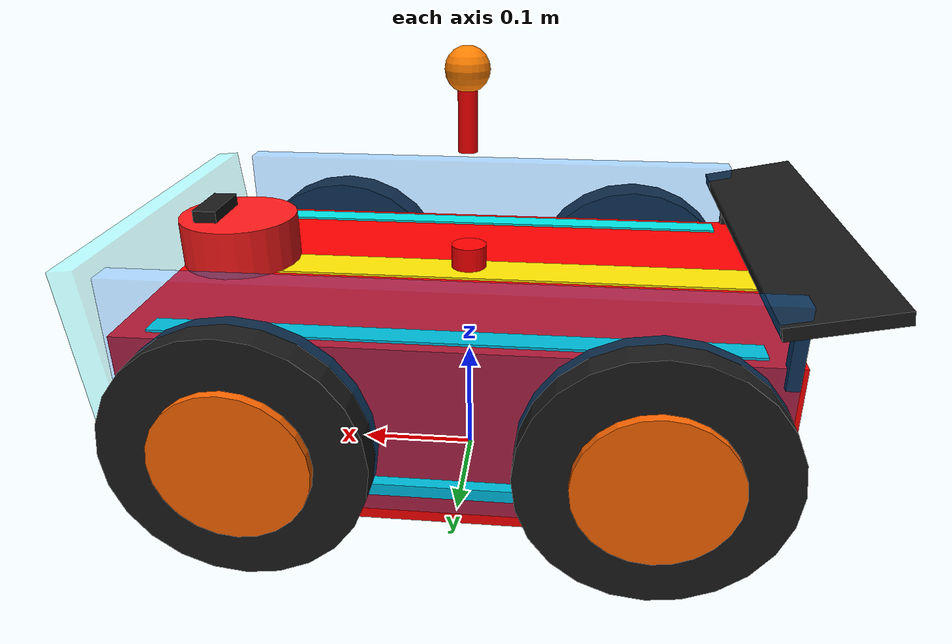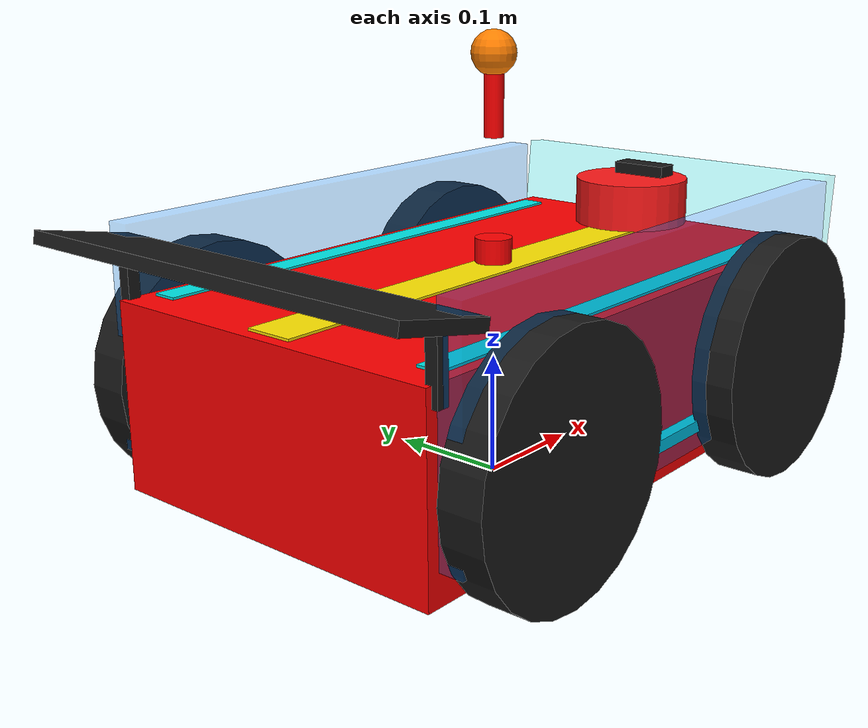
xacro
<?xml version="1.0"?>
<robot name="diff_drive_robot" xmlns:xacro="http://www.ros.org/wiki/xacro">

  <!-- Define properties for easy modification -->
  <xacro:property name="wheel_radius" value="0.1"/>
  <xacro:property name="wheel_width" value="0.05"/>
  <xacro:property name="wheel_mass" value="0.5"/>
  <xacro:property name="body_length" value="0.5"/>
  <xacro:property name="body_width" value="0.3"/>
  <xacro:property name="body_height" value="0.15"/>
  <xacro:property name="body_mass" value="10.0"/>
  <xacro:property name="wheel_offset_x" value="0.15"/>

  <!-- ==================== MATERIALS (Racing Theme) ==================== -->
  <material name="racing_black">
    <color rgba="0.1 0.1 0.1 1.0"/>
  </material>
  <material name="racing_red">
    <color rgba="1 0 0 1"/>
  </material>
  <material name="racing_yellow">
    <color rgba="1.0 0.9 0.0 1.0"/>
  </material>
  <material name="glow_orange">
    <color rgba="1.0 0.5 0.0 1.0"/>
  </material>
  <material name="glow_cyan">
    <color rgba="0.0 0.9 0.9 1.0"/>
  </material>
  <material name="glow_red">
    <color rgba="1.0 0.1 0.1 1.0"/>
  </material>
  <material name="energy_shield_blue">
    <color rgba="0.0 0.5 1.0 0.3"/>
  </material>
  <material name="energy_shield_cyan">
    <color rgba="0.0 1.0 1.0 0.25"/>
  </material>
  <material name="wheel_rim_orange">
    <color rgba="1.0 0.4 0.0 1.0"/>
  </material>

  <link name="base_footprint"/>
  <joint name="base_joint" type="fixed">
    <parent link="base_footprint"/>
    <child link="base_link"/>
    <origin xyz="0 0 0.1" rpy="0 0 0"/>
  </joint>

  <!-- ==================== BODY (Red) ==================== -->
  <link name="base_link">
    <visual>
      <geometry>
        <box size="${body_length} ${body_width} ${body_height}"/>
      </geometry>
      <material name="racing_red"/> <!-- Change: now racing red -->
    </visual>
    <collision>
      <geometry>
        <box size="${body_length} ${body_width} ${body_height}"/>
      </geometry>
    </collision>
    <inertial>
      <mass value="${body_mass}"/>
      <inertia ixx="0.0625" ixy="0.0" ixz="0.0"
               iyy="0.1354" iyz="0.0"
               izz="0.1729"/>
    </inertial>
  </link>

  <!-- ==================== RACING STRIPES ==================== -->
  <link name="racing_stripe_center">
    <visual>
      <origin xyz="0 0 0.076" rpy="0 0 0"/>
      <geometry>
        <box size="0.48 0.04 0.002"/>
      </geometry>
      <material name="racing_yellow"/>
    </visual>
  </link>
  <joint name="stripe_center_joint" type="fixed">
    <parent link="base_link"/>
    <child link="racing_stripe_center"/>
    <origin xyz="0 0 0" rpy="0 0 0"/>
  </joint>
  <link name="racing_stripe_left">
    <visual>
      <origin xyz="0 0.13 0.076" rpy="0 0 0"/>
      <geometry>
        <box size="0.45 0.02 0.002"/>
      </geometry>
      <material name="glow_cyan"/>
    </visual>
  </link>
  <joint name="stripe_left_joint" type="fixed">
    <parent link="base_link"/>
    <child link="racing_stripe_left"/>
    <origin xyz="0 0 0" rpy="0 0 0"/>
  </joint>
  <link name="racing_stripe_right">
    <visual>
      <origin xyz="0 -0.13 0.076" rpy="0 0 0"/>
      <geometry>
        <box size="0.45 0.02 0.002"/>
      </geometry>
      <material name="glow_cyan"/>
    </visual>
  </link>
  <joint name="stripe_right_joint" type="fixed">
    <parent link="base_link"/>
    <child link="racing_stripe_right"/>
    <origin xyz="0 0 0" rpy="0 0 0"/>
  </joint>

  <!-- ==================== SPOILER ==================== -->
  <link name="spoiler">
    <visual>
      <origin xyz="-0.26 0 0.12" rpy="0 0.2 0"/>
      <geometry>
        <box size="0.08 0.35 0.01"/>
      </geometry>
      <material name="racing_black"/>
    </visual>
  </link>
  <joint name="spoiler_joint" type="fixed">
    <parent link="base_link"/>
    <child link="spoiler"/>
    <origin xyz="0 0 0" rpy="0 0 0"/>
  </joint>
  <link name="spoiler_support_left">
    <visual>
      <origin xyz="-0.24 0.15 0.085" rpy="0 0 0"/>
      <geometry>
        <box size="0.01 0.01 0.05"/>
      </geometry>
      <material name="racing_black"/>
    </visual>
  </link>
  <joint name="spoiler_support_l_joint" type="fixed">
    <parent link="base_link"/>
    <child link="spoiler_support_left"/>
    <origin xyz="0 0 0" rpy="0 0 0"/>
  </joint>
  <link name="spoiler_support_right">
    <visual>
      <origin xyz="-0.24 -0.15 0.085" rpy="0 0 0"/>
      <geometry>
        <box size="0.01 0.01 0.05"/>
      </geometry>
      <material name="racing_black"/>
    </visual>
  </link>
  <joint name="spoiler_support_r_joint" type="fixed">
    <parent link="base_link"/>
    <child link="spoiler_support_right"/>
    <origin xyz="0 0 0" rpy="0 0 0"/>
  </joint>

  <!-- ==================== ANTENNA (with spinning joint and beacon) ==================== -->
  <link name="antenna_base">
    <visual>
      <origin xyz="0 0 0.09" rpy="0 0 0"/>
      <geometry>
        <cylinder radius="0.015" length="0.02"/>
      </geometry>
      <material name="racing_red"/>
    </visual>
  </link>
  <joint name="antenna_base_joint" type="fixed">
    <parent link="base_link"/>
    <child link="antenna_base"/>
    <origin xyz="0 0 0" rpy="0 0 0"/>
  </joint>
  <link name="antenna_rod">
    <visual>
      <origin xyz="0 0 0.11" rpy="0 0 0"/>
      <geometry>
        <cylinder radius="0.008" length="0.06"/>
      </geometry>
      <material name="racing_red"/>
    </visual>
    <inertial>
      <mass value="0.01"/>
      <inertia ixx="0.00001" ixy="0.0" ixz="0.0"
               iyy="0.00001" iyz="0.0"
               izz="0.00001"/>
    </inertial>
  </link>
  <joint name="antenna_spin_joint" type="continuous">
    <parent link="antenna_base"/>
    <child link="antenna_rod"/>
    <origin xyz="0 0 0.1" rpy="0 0 0"/>
    <axis xyz="0 0 1"/>
  </joint>
  <link name="beacon_light">
    <visual>
      <origin xyz="0 0 0.145" rpy="0 0 0"/>
      <geometry>
        <sphere radius="0.018"/>
      </geometry>
      <material name="glow_orange"/>
    </visual>
  </link>
  <joint name="beacon_joint" type="fixed">
    <parent link="antenna_rod"/>
    <child link="beacon_light"/>
    <origin xyz="0 0 0" rpy="0 0 0"/>
  </joint>

  <!-- ==================== ENERGY SHIELDS/UNDERGLOW (No change) ==================== -->
  <!-- Front shield -->
  <link name="energy_shield_front">
    <visual>
      <origin xyz="0.26 0 0.04" rpy="0 0.1 0"/>
      <geometry>
        <box size="0.02 0.32 0.18"/>
      </geometry>
      <material name="energy_shield_cyan"/>
    </visual>
  </link>

  <joint name="shield_front_joint" type="fixed">
    <parent link="base_link"/>
    <child link="energy_shield_front"/>
    <origin xyz="0 0 0" rpy="0 0 0"/>
  </joint>

  <!-- Side shields -->
  <link name="energy_shield_left">
    <visual>
      <origin xyz="0 0.16 0.04" rpy="0 0 0"/>
      <geometry>
        <box size="0.48 0.02 0.18"/>
      </geometry>
      <material name="energy_shield_blue"/>
    </visual>
  </link>

  <joint name="shield_left_joint" type="fixed">
    <parent link="base_link"/>
    <child link="energy_shield_left"/>
    <origin xyz="0 0 0" rpy="0 0 0"/>
  </joint>

  <link name="energy_shield_right">
    <visual>
      <origin xyz="0 -0.16 0.04" rpy="0 0 0"/>
      <geometry>
        <box size="0.48 0.02 0.18"/>
      </geometry>
      <material name="energy_shield_blue"/>
    </visual>
  </link>

  <joint name="shield_right_joint" type="fixed">
    <parent link="base_link"/>
    <child link="energy_shield_right"/>
    <origin xyz="0 0 0" rpy="0 0 0"/>
  </joint>

  <!-- ==================== UNDERGLOW LIGHTING ==================== -->

  <link name="underglow">
    <visual>
      <origin xyz="0 0 -0.04" rpy="0 0 0"/>
      <geometry>
        <box size="0.45 0.32 0.01"/>
      </geometry>
      <material name="glow_cyan"/>
    </visual>
  </link>

  <joint name="underglow_joint" type="fixed">
    <parent link="base_link"/>
    <child link="underglow"/>
    <origin xyz="0 0 0" rpy="0 0 0"/>
  </joint>

  <!-- ==================== WHEELS, RIMS, SENSORS (No change) ==================== -->
  <!-- Front Left Wheel -->
  <link name="front_left_wheel">
    <!-- Main tire (black) -->
    <visual>
      <geometry>
        <cylinder radius="${wheel_radius}" length="${wheel_width * 0.7}"/>
      </geometry>
      <material name="racing_black"/>
    </visual>
    <collision>
      <geometry>
        <cylinder radius="${wheel_radius}" length="${wheel_width}"/>
      </geometry>
    </collision>
    <inertial>
      <mass value="${wheel_mass}"/>
      <inertia ixx="0.00125" ixy="0.0" ixz="0.0"
               iyy="0.00125" iyz="0.0"
               izz="0.0025"/>
    </inertial>
  </link>

  <!-- Front Left Rim (orange, glowing) -->
  <link name="front_left_rim">
    <visual>
      <origin xyz="0 0 0.02" rpy="0 0 0"/>
      <geometry>
        <cylinder radius="0.06" length="0.01"/>
      </geometry>
      <material name="wheel_rim_orange"/>
    </visual>
  </link>

  <joint name="front_left_rim_joint" type="fixed">
    <parent link="front_left_wheel"/>
    <child link="front_left_rim"/>
    <origin xyz="0 0 0" rpy="0 0 0"/>
  </joint>

  <joint name="front_left_wheel_joint" type="continuous">
    <parent link="base_link"/>
    <child link="front_left_wheel"/>
    <origin xyz="${wheel_offset_x} ${body_width/2 + wheel_width/2} 0" rpy="-1.5708 0 0"/>
    <axis xyz="0 0 1"/>
  </joint>

  <!-- Front Right Wheel -->
  <link name="front_right_wheel">
    <visual>
      <geometry>
        <cylinder radius="${wheel_radius}" length="${wheel_width * 0.7}"/>
      </geometry>
      <material name="racing_black"/>
    </visual>
    <collision>
      <geometry>
        <cylinder radius="${wheel_radius}" length="${wheel_width}"/>
      </geometry>
    </collision>
    <inertial>
      <mass value="${wheel_mass}"/>
      <inertia ixx="0.00125" ixy="0.0" ixz="0.0"
               iyy="0.00125" iyz="0.0"
               izz="0.0025"/>
    </inertial>
  </link>

  <link name="front_right_rim">
    <visual>
      <origin xyz="0 0 0.02" rpy="0 0 0"/>
      <geometry>
        <cylinder radius="0.06" length="0.01"/>
      </geometry>
      <material name="wheel_rim_orange"/>
    </visual>
  </link>

  <joint name="front_right_rim_joint" type="fixed">
    <parent link="front_right_wheel"/>
    <child link="front_right_rim"/>
    <origin xyz="0 0 0" rpy="0 0 0"/>
  </joint>

  <joint name="front_right_wheel_joint" type="continuous">
    <parent link="base_link"/>
    <child link="front_right_wheel"/>
    <origin xyz="${wheel_offset_x} -${body_width/2 + wheel_width/2} 0" rpy="-1.5708 0 0"/>
    <axis xyz="0 0 1"/>
  </joint>

  <!-- ==================== REAR WHEELS (With Orange Rims) ==================== -->

  <!-- Rear Left Wheel -->
  <link name="rear_left_wheel">
    <visual>
      <geometry>
        <cylinder radius="${wheel_radius}" length="${wheel_width * 0.7}"/>
      </geometry>
      <material name="racing_black"/>
    </visual>
    <collision>
      <geometry>
        <cylinder radius="${wheel_radius}" length="${wheel_width}"/>
      </geometry>
    </collision>
    <inertial>
      <mass value="${wheel_mass}"/>
      <inertia ixx="0.00125" ixy="0.0" ixz="0.0"
               iyy="0.00125" iyz="0.0"
               izz="0.0025"/>
    </inertial>
  </link>

  <link name="rear_left_rim">
    <visual>
      <origin xyz="0 0 0.02" rpy="0 0 0"/>
      <geometry>
        <cylinder radius="0.06" length="0.01"/>
      </geometry>
      <material name="wheel_rim_orange"/>
    </visual>
  </link>

  <joint name="rear_left_rim_joint" type="fixed">
    <parent link="rear_left_wheel"/>
    <child link="rear_left_rim"/>
    <origin xyz="0 0 0" rpy="0 0 0"/>
  </joint>

  <joint name="rear_left_wheel_joint" type="continuous">
    <parent link="base_link"/>
    <child link="rear_left_wheel"/>
    <origin xyz="-${wheel_offset_x} ${body_width/2 + wheel_width/2} 0" rpy="-1.5708 0 0"/>
    <axis xyz="0 0 1"/>
  </joint>

  <!-- Rear Right Wheel -->
  <link name="rear_right_wheel">
    <visual>
      <geometry>
        <cylinder radius="${wheel_radius}" length="${wheel_width * 0.7}"/>
      </geometry>
      <material name="racing_black"/>
    </visual>
    <collision>
      <geometry>
        <cylinder radius="${wheel_radius}" length="${wheel_width}"/>
      </geometry>
    </collision>
    <inertial>
      <mass value="${wheel_mass}"/>
      <inertia ixx="0.00125" ixy="0.0" ixz="0.0"
               iyy="0.00125" iyz="0.0"
               izz="0.0025"/>
    </inertial>
  </link>

  <link name="rear_right_rim">
    <visual>
      <origin xyz="0 0 0.02" rpy="0 0 0"/>
      <geometry>
        <cylinder radius="0.06" length="0.01"/>
      </geometry>
      <material name="wheel_rim_orange"/>
    </visual>
  </link>

  <joint name="rear_right_rim_joint" type="fixed">
    <parent link="rear_right_wheel"/>
    <child link="rear_right_rim"/>
    <origin xyz="0 0 0" rpy="0 0 0"/>
  </joint>

  <joint name="rear_right_wheel_joint" type="continuous">
    <parent link="base_link"/>
    <child link="rear_right_wheel"/>
    <origin xyz="-${wheel_offset_x} -${body_width/2 + wheel_width/2} 0" rpy="-1.5708 0 0"/>
    <axis xyz="0 0 1"/>
  </joint>

  <!-- ==================== 2D LiDAR SENSOR (With Glow) ==================== -->

  <link name="lidar_link">
    <visual>
      <geometry>
        <cylinder radius="0.05" length="0.04"/>
      </geometry>
      <material name="glow_red"/>  <!-- Changed to glowing red -->
    </visual>
    <collision>
      <geometry>
        <cylinder radius="0.05" length="0.04"/>
      </geometry>
    </collision>
    <inertial>
      <mass value="0.1"/>
      <inertia ixx="0.0001" ixy="0.0" ixz="0.0"
               iyy="0.0001" iyz="0.0"
               izz="0.0001"/>
    </inertial>
  </link>

  <joint name="lidar_joint" type="fixed">
    <parent link="base_link"/>
    <child link="lidar_link"/>
    <origin xyz="0.2 0 0.1" rpy="0 0 0"/>
  </joint>

  <!-- ==================== CAMERA SENSOR (Same functionality) ==================== -->

  <link name="camera_link">
    <visual>
      <geometry>
        <box size="0.02 0.05 0.02"/>
      </geometry>
      <material name="racing_black"/>  <!-- Changed to black -->
    </visual>
    <collision>
      <geometry>
        <box size="0.02 0.05 0.02"/>
      </geometry>
    </collision>
    <inertial>
      <mass value="0.05"/>
      <inertia ixx="0.0001" ixy="0.0" ixz="0.0"
               iyy="0.0001" iyz="0.0"
               izz="0.0001"/>
    </inertial>
  </link>

  <joint name="camera_joint" type="fixed">
    <parent link="base_link"/>
    <child link="camera_link"/>
    <origin xyz="0.22 0 0.12" rpy="0 0 0"/>
  </joint>

  <link name="camera_optical_link"/>

  <joint name="camera_optical_joint" type="fixed">
    <parent link="camera_link"/>
    <child link="camera_optical_link"/>
    <origin xyz="0 0 0" rpy="${-pi/2} 0 ${-pi/2}"/>
  </joint>

  <!-- ==================== RACING NUMBER "42" (Gazebo Only) ==================== -->
  <gazebo reference="base_link">
    <visual>
      <origin xyz="0.24 0 0.12" rpy="0 0 0"/>
      <geometry>
        <text>42</text>
        <font_name>Arial</font_name>
        <height>0.10</height>
        <color>1 1 0 1</color>
        <cast_shadows>false</cast_shadows>
      </geometry>
    </visual>
  </gazebo>

  <!-- ==================== SPINNING PLUGIN ==================== -->
  <gazebo>
    <plugin name="antenna_spinner" filename="libgazebo_ros_joint_state_publisher.so">
      <update_rate>20</update_rate>
      <joint_name>antenna_spin_joint</joint_name>
      <publish_tf>false</publish_tf>
    </plugin>
  </gazebo>

</robot>
